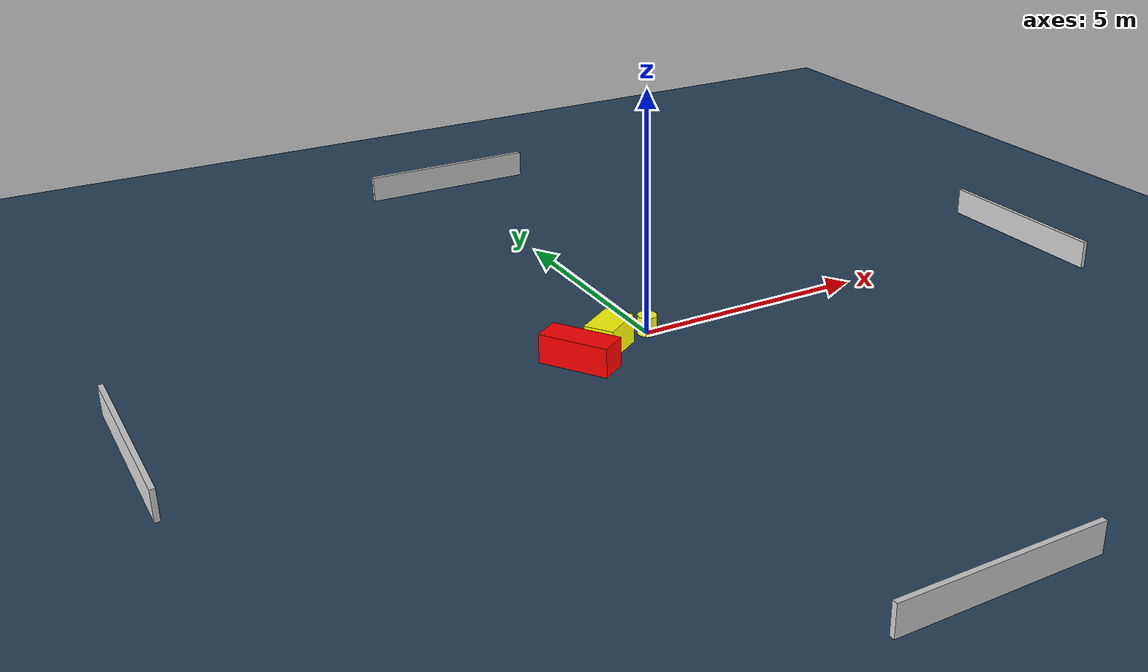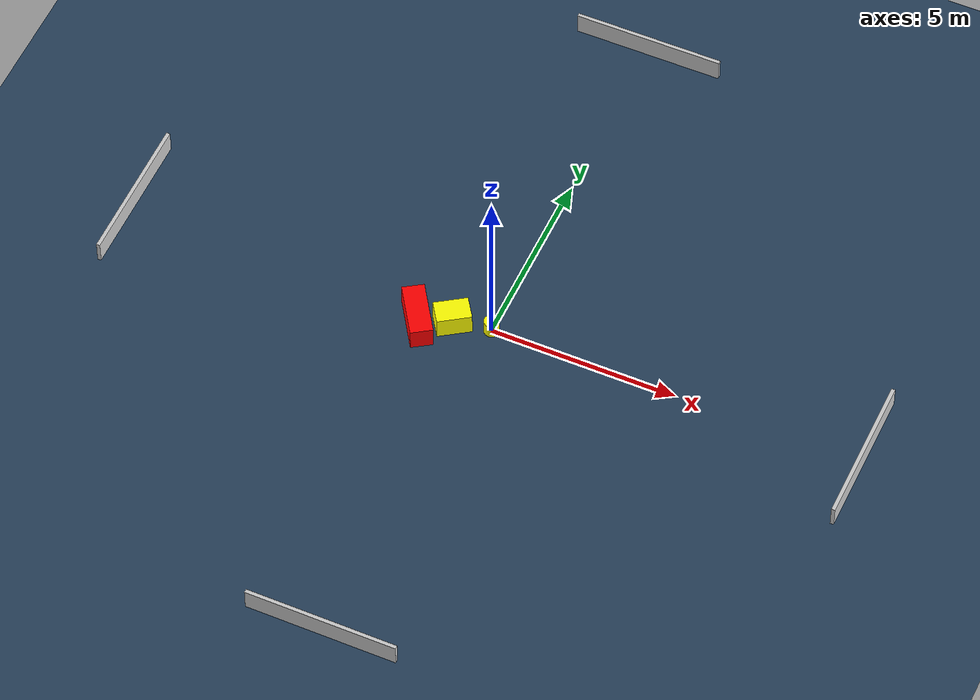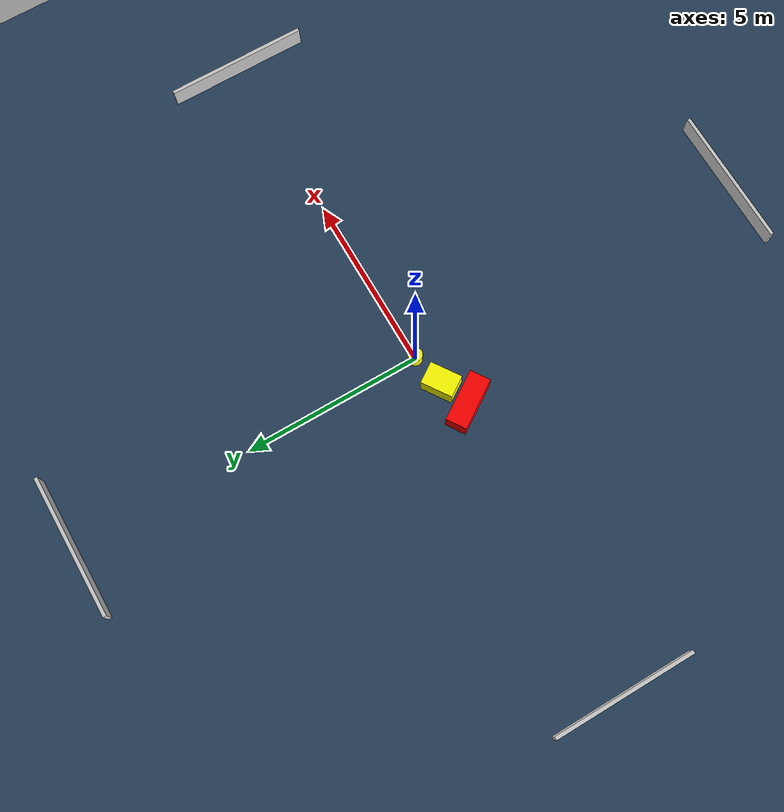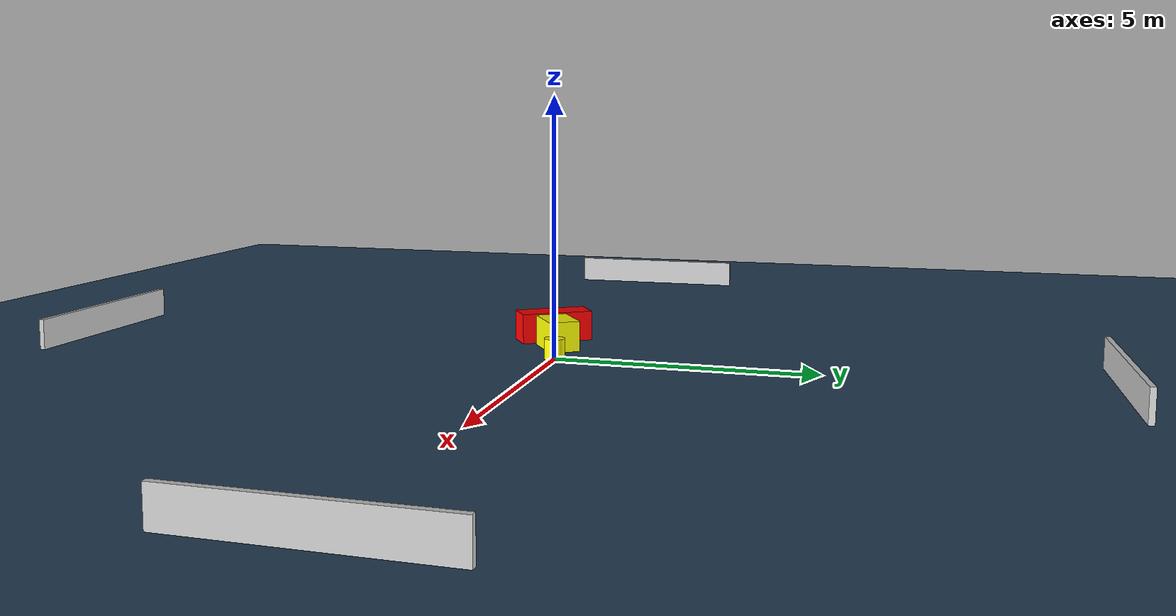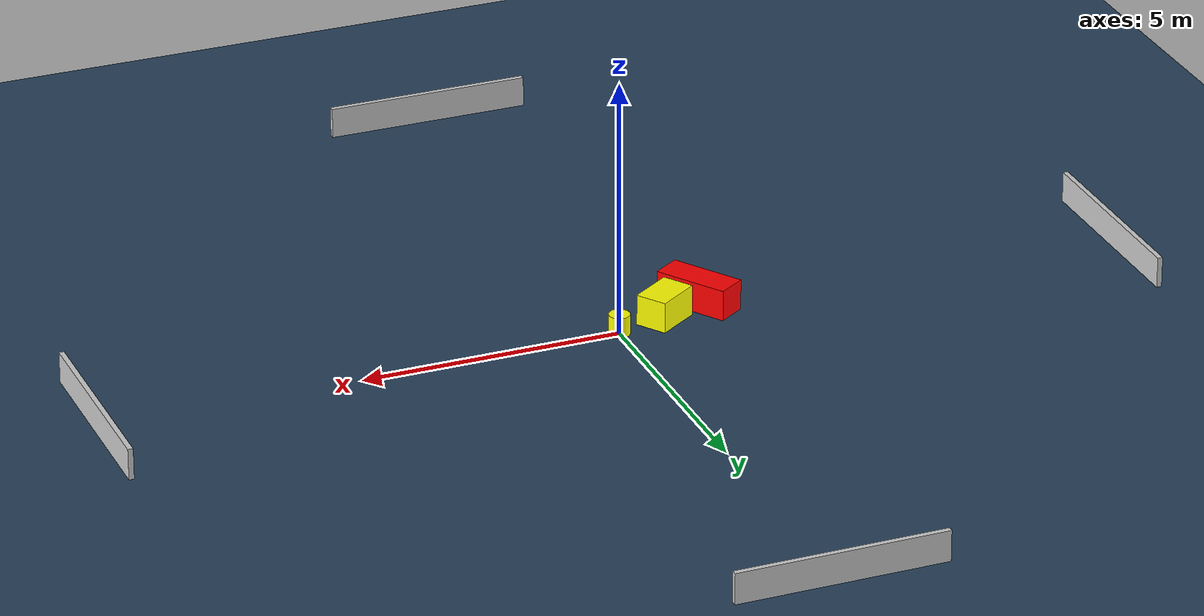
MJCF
<?xml version="1.0" ?>
<mujoco model="generated_environment">
  <option timestep="0.01" integrator="RK4" cone="elliptic"/>
  <default>
    <geom density="1"/>
  </default>
  <asset>
    <texture builtin="gradient" height="3072" name="skybox" rgb1="0.3 0.5 0.7" rgb2="0 0 0" type="skybox" width="512"/>
    <texture builtin="checker" height="300" name="groundplane" rgb1="0.2 0.3 0.4" rgb2="0.1 0.2 0.3" type="2d" width="300"/>
    <material name="groundplane" reflectance="0.2" texrepeat="5 5" texture="groundplane"/>
  </asset>
  <worldbody>
    <light dir="0 0 -1" directional="true" pos="0 0 1.5"/>
    <geom condim="3" friction="0.5 0.005 0.001" material="groundplane" name="floor" pos="0 0 0" size="0 0 0.05" type="plane"/>
    <body name="walls">
      <geom name="wall_1" condim="4" pos="-10.0 0.0 0.3" rgba="0.800000011920929 0.800000011920929 0.800000011920929 1.0" size="0.05 2.0 0.3" type="box"/>
      <geom name="wall_2" condim="4" pos="10.0 0.0 0.3" rgba="0.800000011920929 0.800000011920929 0.800000011920929 1.0" size="0.05 2.0 0.3" type="box"/>
      <geom name="wall_3" condim="4" pos="0.0 -10.0 0.3" rgba="0.800000011920929 0.800000011920929 0.800000011920929 1.0" size="2.0 0.05 0.3" type="box"/>
      <geom name="wall_4" condim="4" pos="0.0 10.0 0.3" rgba="0.800000011920929 0.800000011920929 0.800000011920929 1.0" size="2.0 0.05 0.3" type="box"/>
    </body>
    <body name="robot">
      <joint name="joint_x" type="slide" pos="0 0 0" axis="1 0 0"/>
      <joint name="joint_y" type="slide" pos="0 0 0" axis="0 1 0"/>
      <geom name="robot" type="cylinder" pos="0.0 0.0 0.2" size="0.2 0.2 0.0" mass="5.0" friction="1.0 0.005 0.0001" condim="4" rgba="1.0 1.0 0.0 1.0"/>
    </body>
    <body name="obstacle_1_movable">
      <geom name="obstacle_1_movable" condim="4" pos="-0.9799351754428479 -0.21264495827296032 0.3" euler="0 0 33.86660438289002" friction="0.0 0.005 0.001" rgba="1.0 1.0 0.0 1.0" size="0.45171202487069484 0.3119520236817172 0.3" type="box" mass="0.1"/>
      <joint type="free"/>
    </body>
    <body name="obstacle_2_static">
      <geom name="obstacle_2_static" condim="4" pos="-1.7978972802049977 -0.536615000070618 0.3" euler="0 0 213.1939355962181" friction="0.0 0.005 0.001" rgba="1.0 0.0 0.0 1.0" size="0.2939958548501421 0.7334948981886862 0.3" type="box"/>
    </body>
  </worldbody>
  <actuator>
    <motor name="actuator_x" joint="joint_x" gear="1" ctrlrange="-1 1"/>
    <motor name="actuator_y" joint="joint_y" gear="1" ctrlrange="-1 1"/>
  </actuator>
</mujoco>
